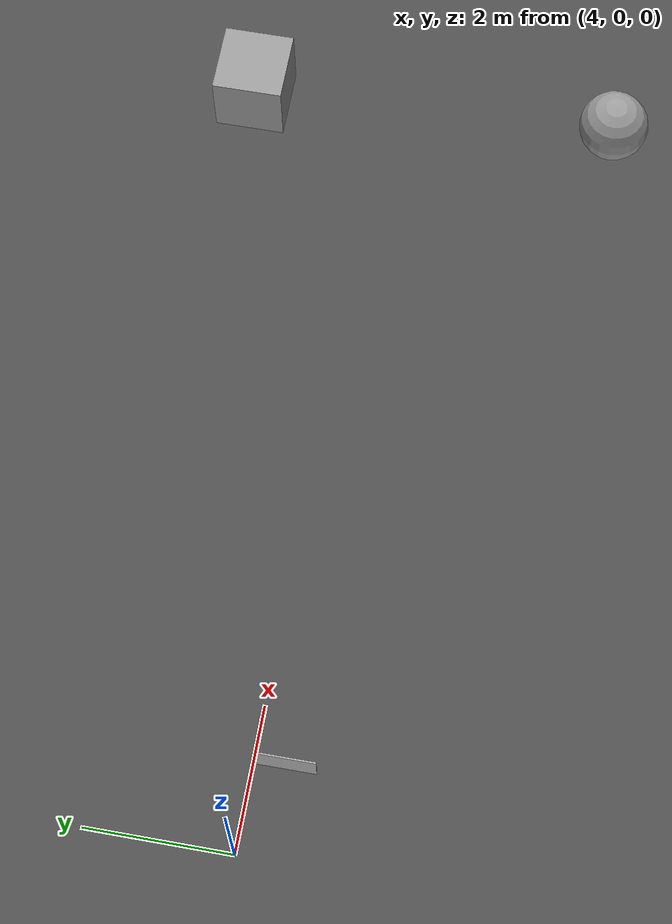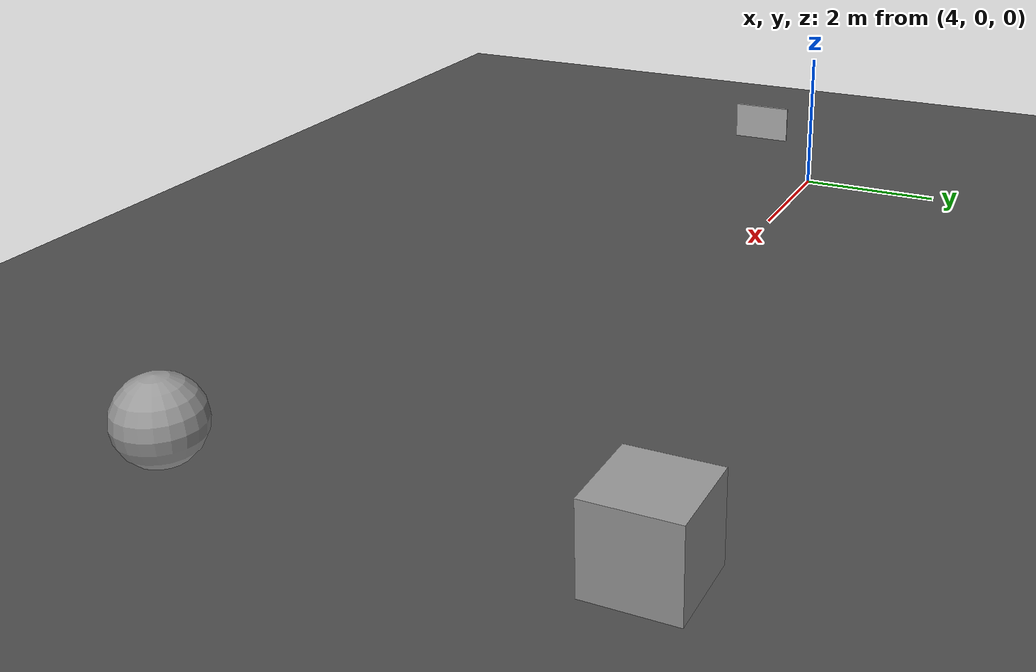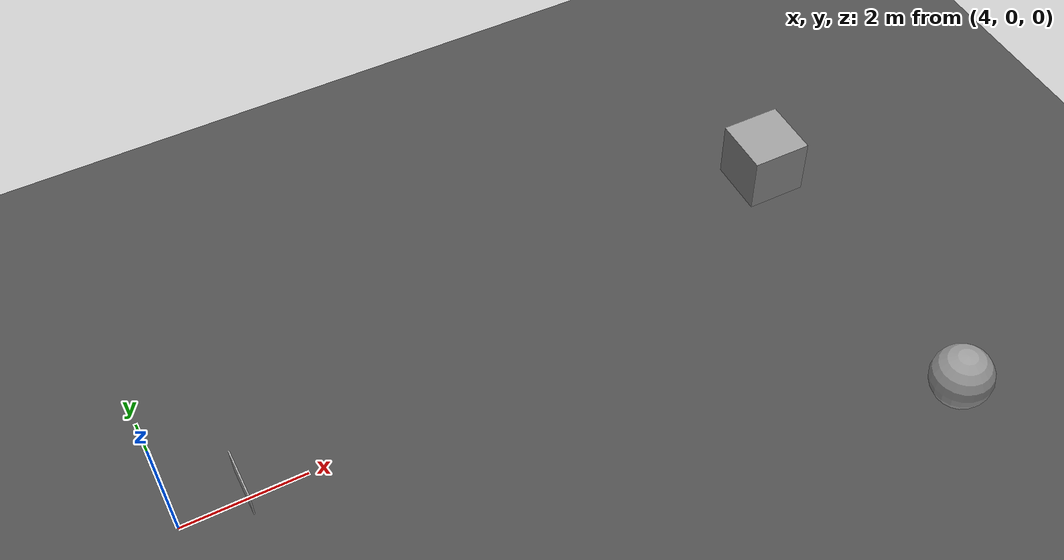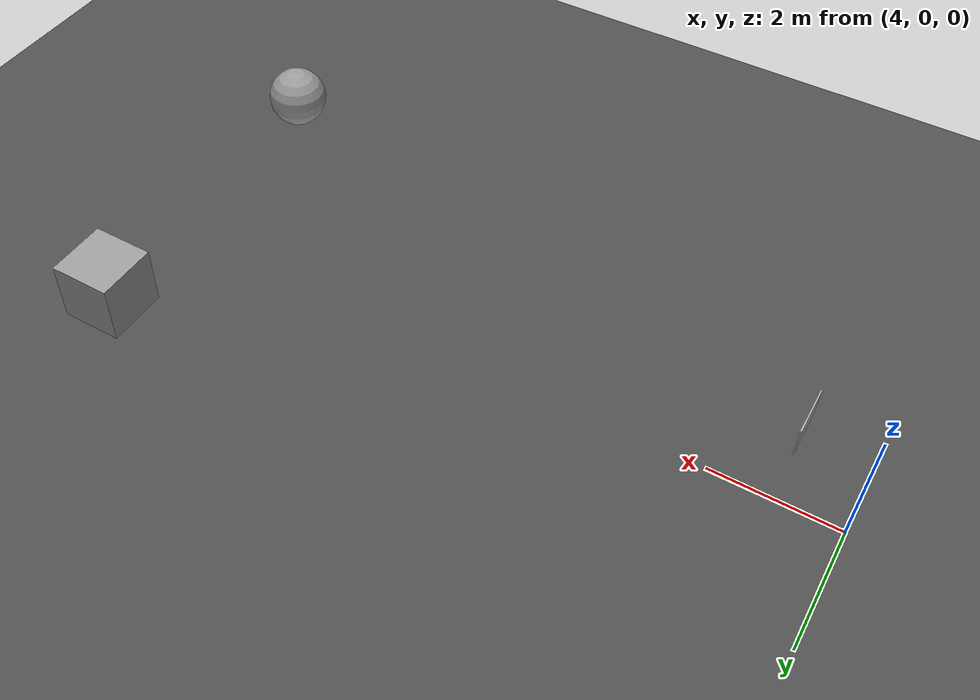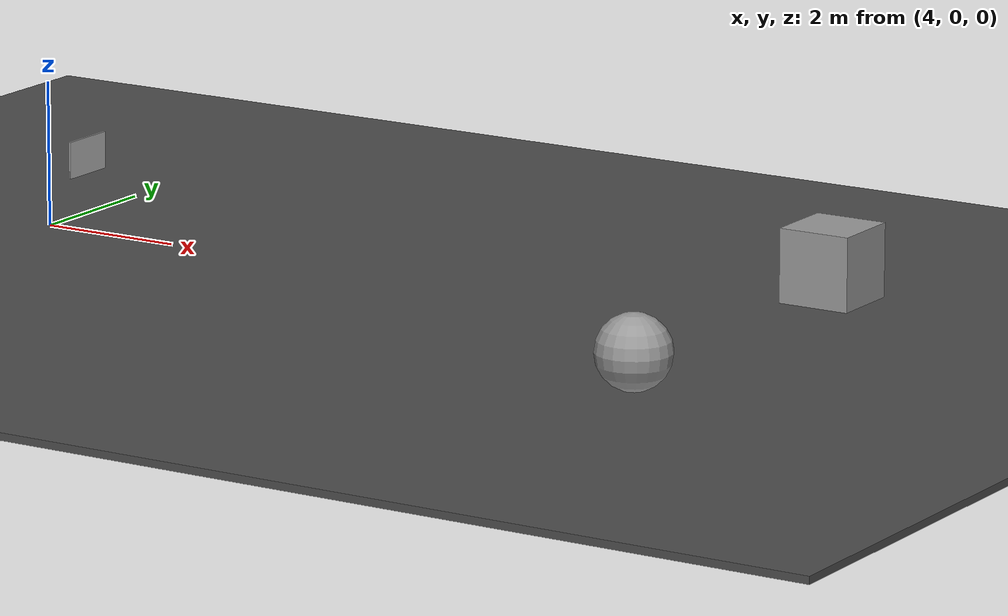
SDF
<sdf version="1.7">
 <world name="default">
  <light name="sun" type="directional">
   <pose>0 0 10 0 -0 0</pose>
   <diffuse>0.8 0.8 0.8 1</diffuse>
   <specular>0.2 0.2 0.2 1</specular>
   <attenuation>
    <range>1000</range>
    <constant>0.9</constant>
    <linear>0.01</linear>
    <quadratic>0.001</quadratic>
   </attenuation>
   <direction>-0.5 0.1 -0.9</direction>
   <spot><inner_angle>0</inner_angle><outer_angle>0</outer_angle><falloff>0</falloff></spot>
  </light>
  <model name="ground_plane">
   <static>1</static>
   <link name="link">
    <collision name="collision">
     <geometry><plane><normal>0 0 1</normal><size>100 100</size></plane></geometry>
     <surface><friction><ode><mu>100</mu><mu2>50</mu2></ode></friction></surface>
    </collision>
    <visual name="visual">
     <cast_shadows>0</cast_shadows>
     <geometry><plane><normal>0 0 1</normal><size>100 100</size></plane></geometry>
     <material>
      <script><uri>file://media/materials/scripts/gazebo.material</uri><name>Gazebo/Grey</name></script>
     </material>
    </visual>
   </link>
  </model>
  <gravity>0 0 -9.8</gravity>
  <magnetic_field>6e-06 2.3e-05 -4.2e-05</magnetic_field>
  <atmosphere type="adiabatic"/>
  <physics name="default_physics" default="0" type="ode">
   <max_step_size>0.001</max_step_size>
   <real_time_factor>1</real_time_factor>
   <real_time_update_rate>1000</real_time_update_rate>
  </physics>
  <scene><ambient>0.4 0.4 0.4 1</ambient><background>0.7 0.7 0.7 1</background><shadows>1</shadows></scene>
  <spherical_coordinates>
   <surface_model>EARTH_WGS84</surface_model>
   <latitude_deg>0</latitude_deg>
   <longitude_deg>0</longitude_deg>
   <elevation>0</elevation>
   <heading_deg>0</heading_deg>
  </spherical_coordinates>
  <model name="asphalt_plane">
   <static>1</static>
   <link name="link">
    <collision name="collision"><geometry><box><size>26.6078 32.6144 0.1</size></box></geometry></collision>
    <visual name="visual">
     <cast_shadows>0</cast_shadows>
     <geometry><box><size>26.6078 32.6144 0.1</size></box></geometry>
     <material>
      <script>
       <uri>model://asphalt_plane/materials/scripts</uri>
       <uri>model://asphalt_plane/materials/textures</uri>
       <name>vrc/asphalt</name>
      </script>
     </material>
    </visual>
   </link>
   <pose>11.338 -0.012287 0 0 -0 0</pose>
  </model>
  <audio><device>default</device></audio>
  <light name="user_directional_light_0" type="directional">
   <pose>2.48968 3.30304 1 0 -0 0</pose>
   <diffuse>0.5 0.5 0.5 1</diffuse>
   <specular>0.1 0.1 0.1 1</specular>
   <direction>0.1 0.1 -0.9</direction>
   <attenuation>
    <range>20</range>
    <constant>0.5</constant>
    <linear>0.01</linear>
    <quadratic>0.001</quadratic>
   </attenuation>
   <spot><inner_angle>0</inner_angle><outer_angle>0</outer_angle><falloff>0</falloff></spot>
  </light>
  <model name="unit_box_0">
   <pose>15.0928 1.93769 0.55 0 -0 2.7e-05</pose>
   <link name="link">
    <inertial>
     <mass>1</mass>
     <inertia>
      <ixx>0.166667</ixx>
      <ixy>0</ixy>
      <ixz>0</ixz>
      <iyy>0.166667</iyy>
      <iyz>0</iyz>
      <izz>0.166667</izz>
     </inertia>
    </inertial>
    <collision name="collision"><geometry><box><size>1 1 1</size></box></geometry></collision>
    <visual name="visual">
     <geometry><box><size>1 1 1</size></box></geometry>
     <material>
      <script><name>Gazebo/Grey</name><uri>file://media/materials/scripts/gazebo.material</uri></script>
     </material>
    </visual>
   </link>
  </model>
  <model name="unit_sphere">
   <pose>15.2534 -3.32864 0.55 0 -0 0</pose>
   <link name="link">
    <inertial>
     <mass>1</mass>
     <inertia><ixx>0.1</ixx><ixy>0</ixy><ixz>0</ixz><iyy>0.1</iyy><iyz>0</iyz><izz>0.1</izz></inertia>
    </inertial>
    <collision name="collision"><geometry><sphere><radius>0.5</radius></sphere></geometry></collision>
    <visual name="visual">
     <geometry><sphere><radius>0.5</radius></sphere></geometry>
     <material>
      <script><name>Gazebo/Grey</name><uri>file://media/materials/scripts/gazebo.material</uri></script>
     </material>
    </visual>
   </link>
  </model>
  <model name="checkerboard_5_8_0_1">
   <static>1</static>
   <link name="checkerboard_5_8_0_1">
    <inertial>
     <mass>0.0011</mass>
     <inertia>
      <ixx>3.96e-09</ixx>
      <ixy>0</ixy>
      <ixz>0</ixz>
      <iyy>3.96e-09</iyy>
      <iyz>0</iyz>
      <izz>3.96e-09</izz>
     </inertia>
    </inertial>
    <visual name="visual">
     <geometry><mesh><uri>model://checkerboard_5_8_0_1/meshes/checkerboard_5_8_0_1.dae</uri></mesh></geometry>
    </visual>
    <collision name="collision">
     <geometry><mesh><uri>model://checkerboard_5_8_0_1/meshes/checkerboard_5_8_0_1.dae</uri></mesh></geometry>
     <origin xyz="0 0 0" rpy="0 0 0"/>
    </collision>
   </link>
   <pose>5 -0.5 1.2 1.5708 0 -1.5708</pose>
  </model>
 </world>
</sdf>
